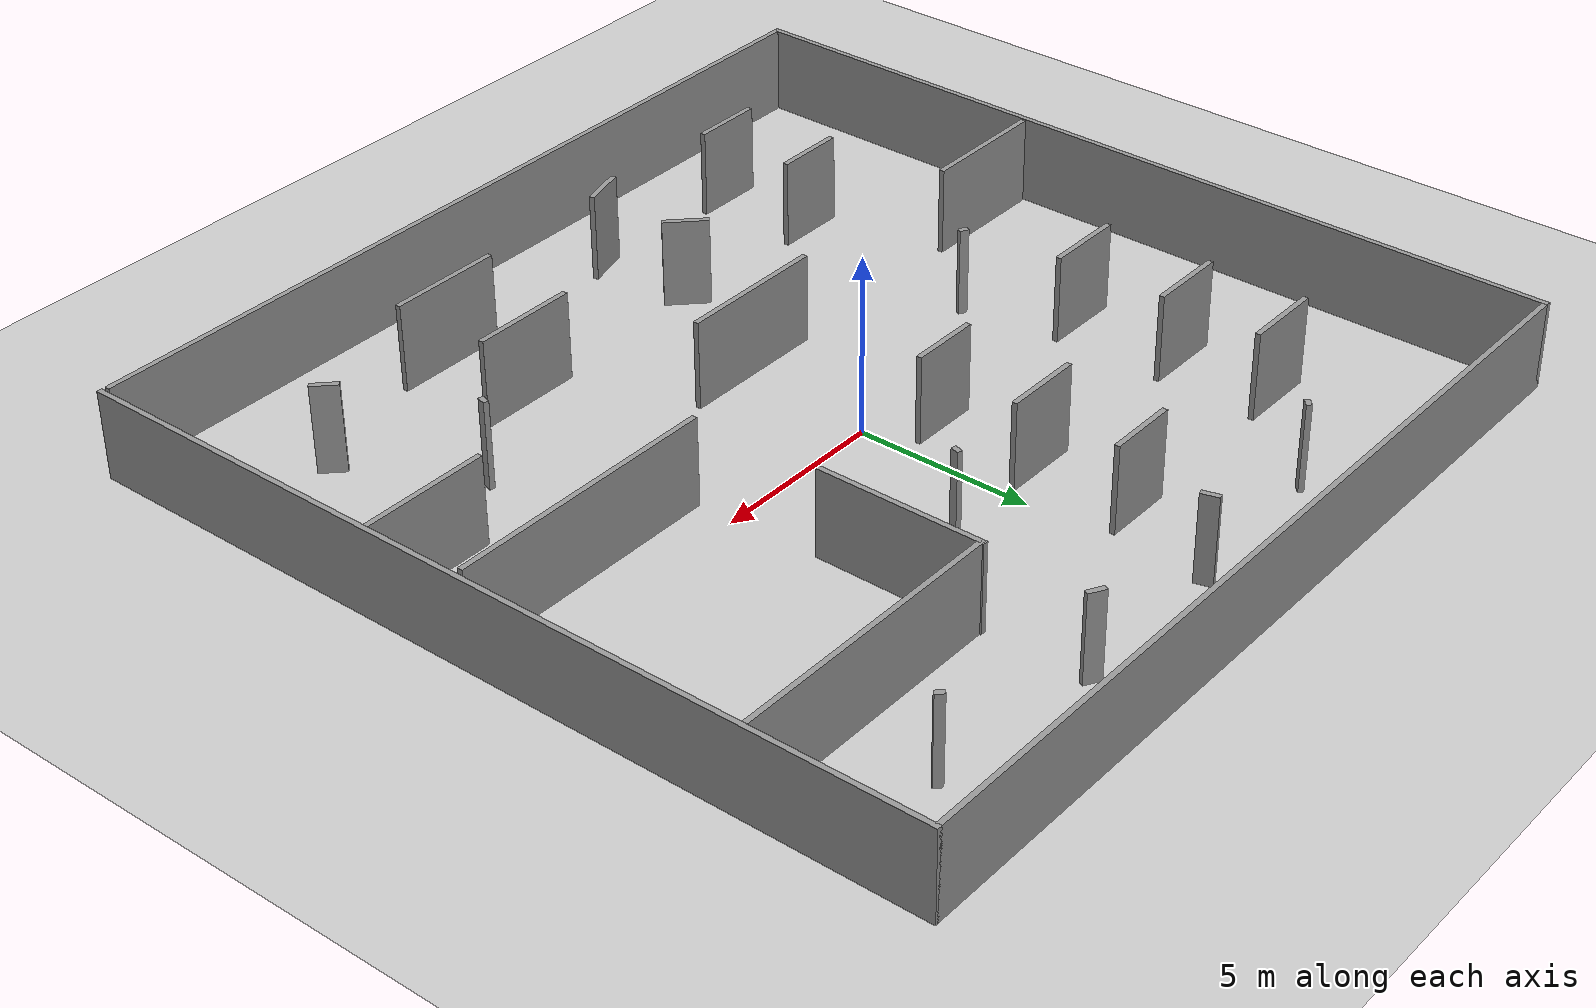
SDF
<sdf version="1.7">
 <world name="default">
  <light name="sun" type="directional">
   <pose>0 0 10 0 -0 0</pose>
   <diffuse>0.8 0.8 0.8 1</diffuse>
   <specular>0.2 0.2 0.2 1</specular>
   <attenuation>
    <range>1000</range>
    <constant>0.9</constant>
    <linear>0.01</linear>
    <quadratic>0.001</quadratic>
   </attenuation>
   <direction>-0.5 0.1 -0.9</direction>
   <spot><inner_angle>0</inner_angle><outer_angle>0</outer_angle><falloff>0</falloff></spot>
  </light>
  <model name="ground_plane">
   <static>1</static>
   <link name="link">
    <collision name="collision">
     <geometry><plane><normal>0 0 1</normal><size>100 100</size></plane></geometry>
     <surface>
      <contact><collide_bitmask>65535</collide_bitmask></contact>
      <friction><ode><mu>100</mu><mu2>50</mu2></ode></friction>
     </surface>
    </collision>
    <visual name="visual">
     <cast_shadows>0</cast_shadows>
     <geometry><plane><normal>0 0 1</normal><size>100 100</size></plane></geometry>
     <material>
      <script><uri>file://media/materials/scripts/gazebo.material</uri><name>Gazebo/Grey</name></script>
     </material>
    </visual>
   </link>
  </model>
  <gravity>0 0 -9.8</gravity>
  <magnetic_field>6e-06 2.3e-05 -4.2e-05</magnetic_field>
  <atmosphere type="adiabatic"/>
  <physics type="ode">
   <max_step_size>0.001</max_step_size>
   <real_time_factor>1</real_time_factor>
   <real_time_update_rate>1000</real_time_update_rate>
  </physics>
  <scene><ambient>0.4 0.4 0.4 1</ambient><background>0.7 0.7 0.7 1</background><shadows>1</shadows></scene>
  <spherical_coordinates>
   <surface_model>EARTH_WGS84</surface_model>
   <latitude_deg>0</latitude_deg>
   <longitude_deg>0</longitude_deg>
   <elevation>0</elevation>
   <heading_deg>0</heading_deg>
  </spherical_coordinates>
  <model name="Untitled">
   <pose>0.2883 -0.441187 0 0 -0 0</pose>
   <link name="Wall_1">
    <collision name="Wall_1_Collision">
     <geometry><box><size>25 0.15 2.5</size></box></geometry>
     <pose>0 0 1.25 0 -0 0</pose>
    </collision>
    <visual name="Wall_1_Visual">
     <pose>0 0 1.25 0 -0 0</pose>
     <geometry><box><size>25 0.15 2.5</size></box></geometry>
     <material>
      <script><uri>file://media/materials/scripts/gazebo.material</uri><name>Gazebo/Grey</name></script>
      <ambient>1 1 1 1</ambient>
     </material>
     <meta><layer>0</layer></meta>
    </visual>
    <pose>-12.55 -0 0 0 -0 -1.5708</pose>
   </link>
   <link name="Wall_10">
    <collision name="Wall_10_Collision">
     <geometry><box><size>7.75 0.15 2.5</size></box></geometry>
     <pose>0 0 1.25 0 -0 0</pose>
    </collision>
    <visual name="Wall_10_Visual">
     <pose>0 0 1.25 0 -0 0</pose>
     <geometry><box><size>7.75 0.15 2.5</size></box></geometry>
     <material>
      <script><uri>file://media/materials/scripts/gazebo.material</uri><name>Gazebo/Grey</name></script>
      <ambient>1 1 1 1</ambient>
     </material>
     <meta><layer>0</layer></meta>
    </visual>
    <pose>8.45676 -0.713653 0 0 -0 0</pose>
   </link>
   <link name="Wall_12">
    <collision name="Wall_12_Collision">
     <geometry><box><size>4.76551 0.15 2.5</size></box></geometry>
     <pose>0 0 1.25 0 -0 0</pose>
    </collision>
    <visual name="Wall_12_Visual">
     <pose>0 0 1.25 0 -0 0</pose>
     <geometry><box><size>4.76551 0.15 2.5</size></box></geometry>
     <material>
      <script><uri>file://media/materials/scripts/gazebo.material</uri><name>Gazebo/Grey</name></script>
      <ambient>1 1 1 1</ambient>
     </material>
     <meta><layer>0</layer></meta>
    </visual>
    <pose>4.41402 5.23153 0 0 -0 -1.5708</pose>
   </link>
   <link name="Wall_14">
    <collision name="Wall_14_Collision">
     <geometry><box><size>3.75 0.15 2.5</size></box></geometry>
     <pose>0 0 1.25 0 -0 0</pose>
    </collision>
    <visual name="Wall_14_Visual">
     <pose>0 0 1.25 0 -0 0</pose>
     <geometry><box><size>3.75 0.15 2.5</size></box></geometry>
     <material>
      <script><uri>file://media/materials/scripts/gazebo.material</uri><name>Gazebo/Grey</name></script>
      <ambient>1 1 1 1</ambient>
     </material>
     <meta><layer>0</layer></meta>
    </visual>
    <pose>-10.5346 -3.46463 0 0 -0 0</pose>
   </link>
   <link name="Wall_17">
    <collision name="Wall_17_Collision">
     <geometry><box><size>4.25 0.15 2.5</size></box></geometry>
     <pose>0 0 1.25 0 -0 0</pose>
    </collision>
    <visual name="Wall_17_Visual">
     <pose>0 0 1.25 0 -0 0</pose>
     <geometry><box><size>4.25 0.15 2.5</size></box></geometry>
     <material>
      <script><uri>file://media/materials/scripts/gazebo.material</uri><name>Gazebo/Grey</name></script>
      <ambient>1 1 1 1</ambient>
     </material>
     <meta><layer>0</layer></meta>
    </visual>
    <pose>-0.737069 -3.46463 0 0 -0 0</pose>
   </link>
   <link name="Wall_19">
    <collision name="Wall_19_Collision">
     <geometry><box><size>3.75 0.15 2.5</size></box></geometry>
     <pose>0 0 1.25 0 -0 0</pose>
    </collision>
    <visual name="Wall_19_Visual">
     <pose>0 0 1.25 0 -0 0</pose>
     <geometry><box><size>3.75 0.15 2.5</size></box></geometry>
     <material>
      <script><uri>file://media/materials/scripts/gazebo.material</uri><name>Gazebo/Grey</name></script>
      <ambient>1 1 1 1</ambient>
     </material>
     <meta><layer>0</layer></meta>
    </visual>
    <pose>10.745 -3.50509 0 0 -0 0</pose>
   </link>
   <link name="Wall_21">
    <collision name="Wall_21_Collision">
     <geometry><box><size>2.25 0.15 2.5</size></box></geometry>
     <pose>0 0 1.25 0 -0 0</pose>
    </collision>
    <visual name="Wall_21_Visual">
     <pose>0 0 1.25 0 -0 0</pose>
     <geometry><box><size>2.25 0.15 2.5</size></box></geometry>
     <material>
      <script><uri>file://media/materials/scripts/gazebo.material</uri><name>Gazebo/Grey</name></script>
      <ambient>1 1 1 1</ambient>
     </material>
     <meta><layer>0</layer></meta>
    </visual>
    <pose>-7.92677 7.62019 0 0 -0 0</pose>
   </link>
   <link name="Wall_23">
    <collision name="Wall_23_Collision">
     <geometry><box><size>2.25 0.15 2.5</size></box></geometry>
     <pose>0 0 1.25 0 -0 0</pose>
    </collision>
    <visual name="Wall_23_Visual">
     <pose>0 0 1.25 0 -0 0</pose>
     <geometry><box><size>2.25 0.15 2.5</size></box></geometry>
     <material>
      <script><uri>file://media/materials/scripts/gazebo.material</uri><name>Gazebo/Grey</name></script>
      <ambient>1 1 1 1</ambient>
     </material>
     <meta><layer>0</layer></meta>
    </visual>
    <pose>-7.96723 4.78831 0 0 -0 0</pose>
   </link>
   <link name="Wall_25">
    <collision name="Wall_25_Collision">
     <geometry><box><size>2.25 0.15 2.5</size></box></geometry>
     <pose>0 0 1.25 0 -0 0</pose>
    </collision>
    <visual name="Wall_25_Visual">
     <pose>0 0 1.25 0 -0 0</pose>
     <geometry><box><size>2.25 0.15 2.5</size></box></geometry>
     <material>
      <script><uri>file://media/materials/scripts/gazebo.material</uri><name>Gazebo/Grey</name></script>
      <ambient>1 1 1 1</ambient>
     </material>
     <meta><layer>0</layer></meta>
    </visual>
    <pose>-7.92677 1.67323 0 0 -0 0</pose>
   </link>
   <link name="Wall_27">
    <collision name="Wall_27_Collision">
     <geometry><box><size>2 0.15 2.5</size></box></geometry>
     <pose>0 0 1.25 0 -0 0</pose>
    </collision>
    <visual name="Wall_27_Visual">
     <pose>0 0 1.25 0 -0 0</pose>
     <geometry><box><size>2 0.15 2.5</size></box></geometry>
     <material>
      <script><uri>file://media/materials/scripts/gazebo.material</uri><name>Gazebo/Grey</name></script>
      <ambient>1 1 1 1</ambient>
     </material>
     <meta><layer>0</layer></meta>
    </visual>
    <pose>-1.57888 7.70111 0 0 -0 0</pose>
   </link>
   <link name="Wall_29">
    <collision name="Wall_29_Collision">
     <geometry><box><size>2.25 0.15 2.5</size></box></geometry>
     <pose>0 0 1.25 0 -0 0</pose>
    </collision>
    <visual name="Wall_29_Visual">
     <pose>0 0 1.25 0 -0 0</pose>
     <geometry><box><size>2.25 0.15 2.5</size></box></geometry>
     <material>
      <script><uri>file://media/materials/scripts/gazebo.material</uri><name>Gazebo/Grey</name></script>
      <ambient>1 1 1 1</ambient>
     </material>
     <meta><layer>0</layer></meta>
    </visual>
    <pose>-1.69661 4.78831 0 0 -0 0</pose>
   </link>
   <link name="Wall_3">
    <collision name="Wall_3_Collision">
     <geometry><box><size>25 0.15 2.5</size></box></geometry>
     <pose>0 0 1.25 0 -0 0</pose>
    </collision>
    <visual name="Wall_3_Visual">
     <pose>0 0 1.25 0 -0 0</pose>
     <geometry><box><size>25 0.15 2.5</size></box></geometry>
     <material>
      <script><uri>file://media/materials/scripts/gazebo.material</uri><name>Gazebo/Grey</name></script>
      <ambient>1 1 1 1</ambient>
     </material>
     <meta><layer>0</layer></meta>
    </visual>
    <pose>-0.125 -12.425 0 0 -0 0</pose>
   </link>
   <link name="Wall_31">
    <collision name="Wall_31_Collision">
     <geometry><box><size>2 0.15 2.5</size></box></geometry>
     <pose>0 0 1.25 0 -0 0</pose>
    </collision>
    <visual name="Wall_31_Visual">
     <pose>0 0 1.25 0 -0 0</pose>
     <geometry><box><size>2 0.15 2.5</size></box></geometry>
     <material>
      <script><uri>file://media/materials/scripts/gazebo.material</uri><name>Gazebo/Grey</name></script>
      <ambient>1 1 1 1</ambient>
     </material>
     <meta><layer>0</layer></meta>
    </visual>
    <pose>-1.78116 1.79459 0 0 -0 0</pose>
   </link>
   <link name="Wall_40">
    <collision name="Wall_40_Collision">
     <geometry><box><size>0.5 0.15 2.5</size></box></geometry>
     <pose>0 0 1.25 0 -0 0</pose>
    </collision>
    <visual name="Wall_40_Visual">
     <pose>0 0 1.25 0 -0 0</pose>
     <geometry><box><size>0.5 0.15 2.5</size></box></geometry>
     <material>
      <script><uri>file://media/materials/scripts/gazebo.material</uri><name>Gazebo/Grey</name></script>
      <ambient>1 1 1 1</ambient>
     </material>
     <meta><layer>0</layer></meta>
    </visual>
    <pose>4.32285 10.486 0 0 -0 -0.523599</pose>
   </link>
   <link name="Wall_42">
    <collision name="Wall_42_Collision">
     <geometry><box><size>0.25 0.15 2.5</size></box></geometry>
     <pose>0 0 1.25 0 -0 0</pose>
    </collision>
    <visual name="Wall_42_Visual">
     <pose>0 0 1.25 0 -0 0</pose>
     <geometry><box><size>0.25 0.15 2.5</size></box></geometry>
     <material>
      <script><uri>file://media/materials/scripts/gazebo.material</uri><name>Gazebo/Grey</name></script>
      <ambient>1 1 1 1</ambient>
     </material>
     <meta><layer>0</layer></meta>
    </visual>
    <pose>9.22314 9.97172 0 0 -0 -0.785398</pose>
   </link>
   <link name="Wall_44">
    <collision name="Wall_44_Collision">
     <geometry><box><size>0.25 0.15 2.5</size></box></geometry>
     <pose>0 0 1.25 0 -0 0</pose>
    </collision>
    <visual name="Wall_44_Visual">
     <pose>0 0 1.25 0 -0 0</pose>
     <geometry><box><size>0.25 0.15 2.5</size></box></geometry>
     <material>
      <script><uri>file://media/materials/scripts/gazebo.material</uri><name>Gazebo/Grey</name></script>
      <ambient>1 1 1 1</ambient>
     </material>
     <meta><layer>0</layer></meta>
    </visual>
    <pose>-4.92611 10.174 0 0 -0 -2.35619</pose>
   </link>
   <link name="Wall_46">
    <collision name="Wall_46_Collision">
     <geometry><box><size>0.5 0.15 2.5</size></box></geometry>
     <pose>0 0 1.25 0 -0 0</pose>
    </collision>
    <visual name="Wall_46_Visual">
     <pose>0 0 1.25 0 -0 0</pose>
     <geometry><box><size>0.5 0.15 2.5</size></box></geometry>
     <material>
      <script><uri>file://media/materials/scripts/gazebo.material</uri><name>Gazebo/Grey</name></script>
      <ambient>1 1 1 1</ambient>
     </material>
     <meta><layer>0</layer></meta>
    </visual>
    <pose>-0.273985 10.4449 0 0 -0 -1.309</pose>
   </link>
   <link name="Wall_48">
    <collision name="Wall_48_Collision">
     <geometry><box><size>0.25 0.15 2.5</size></box></geometry>
     <pose>0 0 1.25 0 -0 0</pose>
    </collision>
    <visual name="Wall_48_Visual">
     <pose>0 0 1.25 0 -0 0</pose>
     <geometry><box><size>0.25 0.15 2.5</size></box></geometry>
     <material>
      <script><uri>file://media/materials/scripts/gazebo.material</uri><name>Gazebo/Grey</name></script>
      <ambient>1 1 1 1</ambient>
     </material>
     <meta><layer>0</layer></meta>
    </visual>
    <pose>1.85238 4.90183 0 0 -0 -1.8326</pose>
   </link>
   <link name="Wall_5">
    <collision name="Wall_5_Collision">
     <geometry><box><size>25.25 0.15 2.5</size></box></geometry>
     <pose>0 0 1.25 0 -0 0</pose>
    </collision>
    <visual name="Wall_5_Visual">
     <pose>0 0 1.25 0 -0 0</pose>
     <geometry><box><size>25.25 0.15 2.5</size></box></geometry>
     <material>
      <script><uri>file://media/materials/scripts/gazebo.material</uri><name>Gazebo/Grey</name></script>
      <ambient>1 1 1 1</ambient>
     </material>
     <meta><layer>0</layer></meta>
    </visual>
    <pose>0 12.425 0 0 -0 0</pose>
   </link>
   <link name="Wall_50">
    <collision name="Wall_50_Collision">
     <geometry><box><size>2 0.15 2.5</size></box></geometry>
     <pose>0 0 1.25 0 -0 0</pose>
    </collision>
    <visual name="Wall_50_Visual">
     <pose>0 0 1.25 0 -0 0</pose>
     <geometry><box><size>2 0.15 2.5</size></box></geometry>
     <material>
      <script><uri>file://media/materials/scripts/gazebo.material</uri><name>Gazebo/Grey</name></script>
      <ambient>1 1 1 1</ambient>
     </material>
     <meta><layer>0</layer></meta>
    </visual>
    <pose>-7.32357 -6.98427 0 0 -0 0</pose>
   </link>
   <link name="Wall_52">
    <collision name="Wall_52_Collision">
     <geometry><box><size>2 0.15 2.5</size></box></geometry>
     <pose>0 0 1.25 0 -0 0</pose>
    </collision>
    <visual name="Wall_52_Visual">
     <pose>0 0 1.25 0 -0 0</pose>
     <geometry><box><size>2 0.15 2.5</size></box></geometry>
     <material>
      <script><uri>file://media/materials/scripts/gazebo.material</uri><name>Gazebo/Grey</name></script>
      <ambient>1 1 1 1</ambient>
     </material>
     <meta><layer>0</layer></meta>
    </visual>
    <pose>-7.24266 -9.85661 0 0 -0 0</pose>
   </link>
   <link name="Wall_54">
    <collision name="Wall_54_Collision">
     <geometry><box><size>3 0.15 2.5</size></box></geometry>
     <pose>0 0 1.25 0 -0 0</pose>
    </collision>
    <visual name="Wall_54_Visual">
     <pose>0 0 1.25 0 -0 0</pose>
     <geometry><box><size>3 0.15 2.5</size></box></geometry>
     <material>
      <script><uri>file://media/materials/scripts/gazebo.material</uri><name>Gazebo/Grey</name></script>
      <ambient>1 1 1 1</ambient>
     </material>
     <meta><layer>0</layer></meta>
    </visual>
    <pose>3.81624 -6.98427 0 0 -0 0</pose>
   </link>
   <link name="Wall_56">
    <collision name="Wall_56_Collision">
     <geometry><box><size>3.25 0.15 2.5</size></box></geometry>
     <pose>0 0 1.25 0 -0 0</pose>
    </collision>
    <visual name="Wall_56_Visual">
     <pose>0 0 1.25 0 -0 0</pose>
     <geometry><box><size>3.25 0.15 2.5</size></box></geometry>
     <material>
      <script><uri>file://media/materials/scripts/gazebo.material</uri><name>Gazebo/Grey</name></script>
      <ambient>1 1 1 1</ambient>
     </material>
     <meta><layer>0</layer></meta>
    </visual>
    <pose>3.77942 -9.7757 0 0 -0 0</pose>
   </link>
   <link name="Wall_59">
    <collision name="Wall_59_Collision">
     <geometry><box><size>1.25 0.15 2.5</size></box></geometry>
     <pose>0 0 1.25 0 -0 0</pose>
    </collision>
    <visual name="Wall_59_Visual">
     <pose>0 0 1.25 0 -0 0</pose>
     <geometry><box><size>1.25 0.15 2.5</size></box></geometry>
     <material>
      <script><uri>file://media/materials/scripts/gazebo.material</uri><name>Gazebo/Grey</name></script>
      <ambient>1 1 1 1</ambient>
     </material>
     <meta><layer>0</layer></meta>
    </visual>
    <pose>-2.31725 -7.04953 0 0 -0 -0.785398</pose>
   </link>
   <link name="Wall_6">
    <collision name="Wall_6_Collision">
     <geometry><box><size>25 0.15 2.5</size></box></geometry>
     <pose>0 0 1.25 0 -0 0</pose>
    </collision>
    <visual name="Wall_6_Visual">
     <pose>0 0 1.25 0 -0 0</pose>
     <geometry><box><size>25 0.15 2.5</size></box></geometry>
     <material>
      <script><uri>file://media/materials/scripts/gazebo.material</uri><name>Gazebo/Grey</name></script>
      <ambient>1 1 1 1</ambient>
     </material>
     <meta><layer>0</layer></meta>
    </visual>
    <pose>12.55 -0 0 0 -0 -1.5708</pose>
   </link>
   <link name="Wall_61">
    <collision name="Wall_61_Collision">
     <geometry><box><size>1.25 0.15 2.5</size></box></geometry>
     <pose>0 0 1.25 0 -0 0</pose>
    </collision>
    <visual name="Wall_61_Visual">
     <pose>0 0 1.25 0 -0 0</pose>
     <geometry><box><size>1.25 0.15 2.5</size></box></geometry>
     <material>
      <script><uri>file://media/materials/scripts/gazebo.material</uri><name>Gazebo/Grey</name></script>
      <ambient>1 1 1 1</ambient>
     </material>
     <meta><layer>0</layer></meta>
    </visual>
    <pose>-2.30694 -9.95851 0 0 -0 -2.87979</pose>
   </link>
   <link name="Wall_63">
    <collision name="Wall_63_Collision">
     <geometry><box><size>0.25 0.15 2.5</size></box></geometry>
     <pose>0 0 1.25 0 -0 0</pose>
    </collision>
    <visual name="Wall_63_Visual">
     <pose>0 0 1.25 0 -0 0</pose>
     <geometry><box><size>0.25 0.15 2.5</size></box></geometry>
     <material>
      <script><uri>file://media/materials/scripts/gazebo.material</uri><name>Gazebo/Grey</name></script>
      <ambient>1 1 1 1</ambient>
     </material>
     <meta><layer>0</layer></meta>
    </visual>
    <pose>-6.46568 -1.10275 0 0 -0 -0.523599</pose>
   </link>
   <link name="Wall_65">
    <collision name="Wall_65_Collision">
     <geometry><box><size>0.75 0.15 2.5</size></box></geometry>
     <pose>0 0 1.25 0 -0 0</pose>
    </collision>
    <visual name="Wall_65_Visual">
     <pose>0 0 1.25 0 -0 0</pose>
     <geometry><box><size>0.75 0.15 2.5</size></box></geometry>
     <material>
      <script><uri>file://media/materials/scripts/gazebo.material</uri><name>Gazebo/Grey</name></script>
      <ambient>1 1 1 1</ambient>
     </material>
     <meta><layer>0</layer></meta>
    </visual>
    <pose>9.03581 -8.53143 0 0 -0 -0.785398</pose>
   </link>
   <link name="Wall_68">
    <collision name="Wall_68_Collision">
     <geometry><box><size>0.25 0.15 2.5</size></box></geometry>
     <pose>0 0 1.25 0 -0 0</pose>
    </collision>
    <visual name="Wall_68_Visual">
     <pose>0 0 1.25 0 -0 0</pose>
     <geometry><box><size>0.25 0.15 2.5</size></box></geometry>
     <material>
      <script><uri>file://media/materials/scripts/gazebo.material</uri><name>Gazebo/Grey</name></script>
      <ambient>1 1 1 1</ambient>
     </material>
     <meta><layer>0</layer></meta>
    </visual>
    <pose>7.15206 -5.0907 0 0 -0 -1.8326</pose>
   </link>
   <link name="Wall_8">
    <collision name="Wall_8_Collision">
     <geometry><box><size>8.25 0.15 2.5</size></box></geometry>
     <pose>0 0 1.25 0 -0 0</pose>
    </collision>
    <visual name="Wall_8_Visual">
     <pose>0 0 1.25 0 -0 0</pose>
     <geometry><box><size>8.25 0.15 2.5</size></box></geometry>
     <material>
      <script><uri>file://media/materials/scripts/gazebo.material</uri><name>Gazebo/Grey</name></script>
      <ambient>1 1 1 1</ambient>
     </material>
     <meta><layer>0</layer></meta>
    </visual>
    <pose>8.46402 7.49883 0 0 -0 0</pose>
   </link>
   <static>1</static>
  </model>
 </world>
</sdf>
